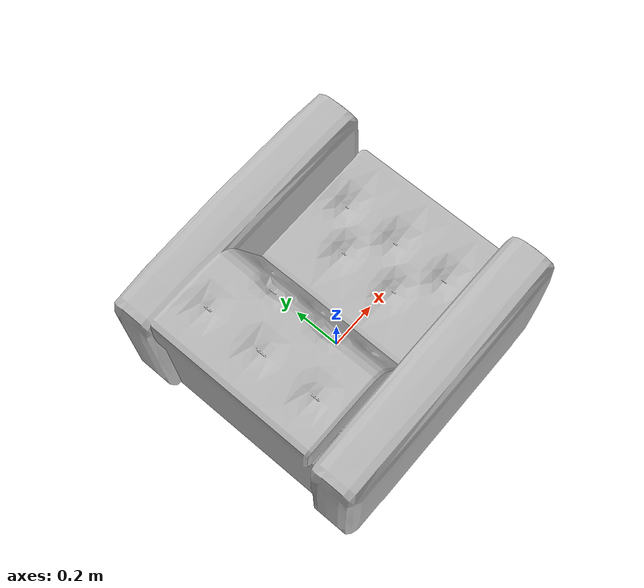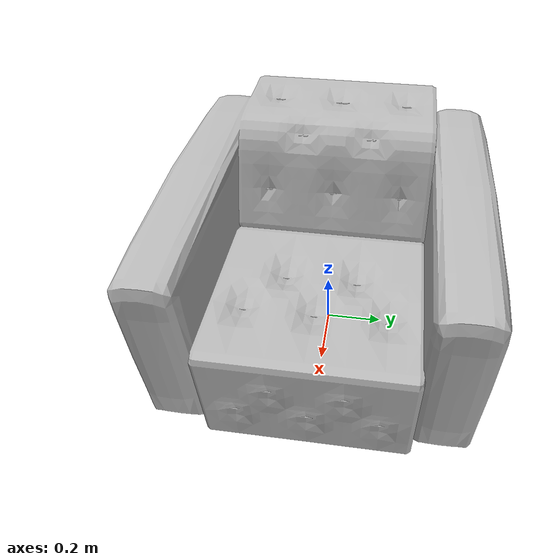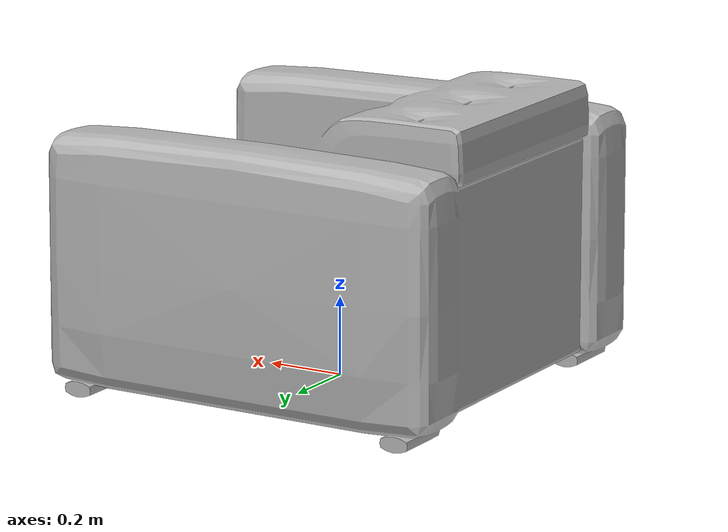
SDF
<?xml version='1.0'?>
<sdf version='1.4'>
  <model name='262'>
    <pose>0 0 0 0 0 0</pose>
    <static>true</static>
    <link name='link'>
      <collision name='collision'>
        <pose>0 0 0 0 0 0</pose>
        <geometry>
          <box>
            <size>1.09003 1.06 2</size>
          </box>
        </geometry>
      </collision>
      <visual name='visual'>
        <pose>0 0 0 0 0 0</pose>
        <geometry>
          <mesh><uri>model://262/262.dae</uri></mesh>
        </geometry>
      </visual>
    </link>
  </model>
</sdf>
